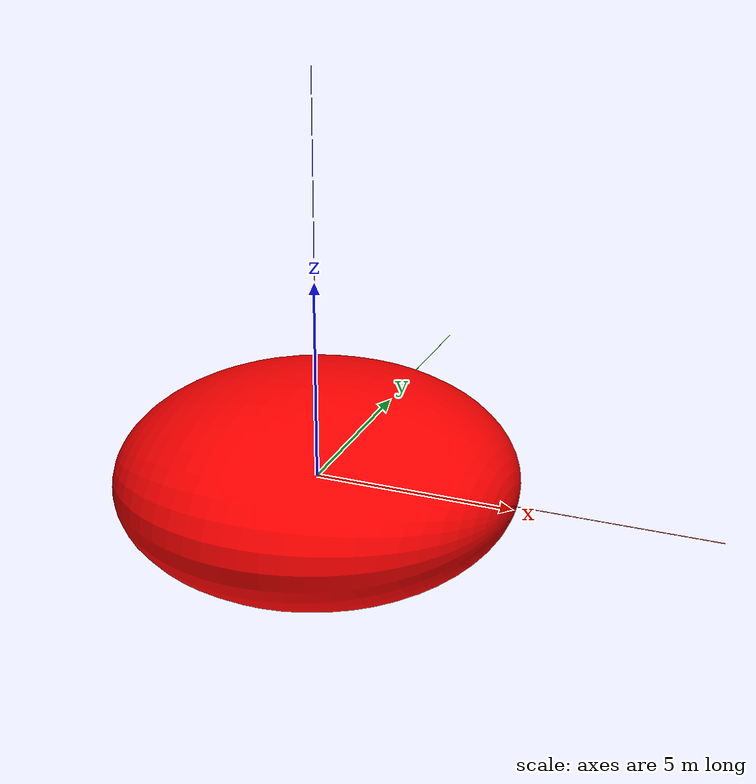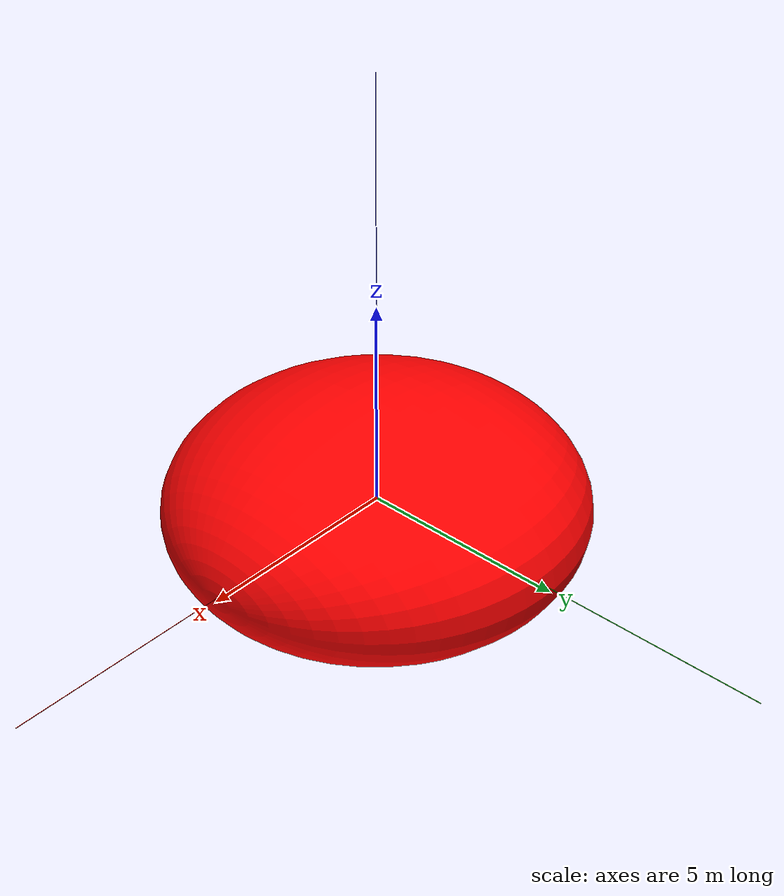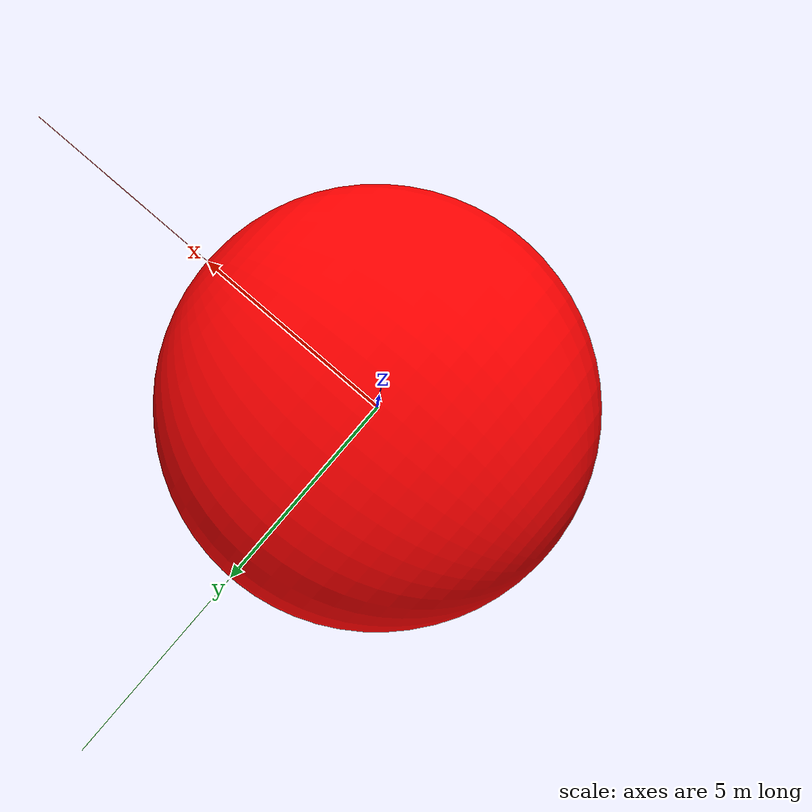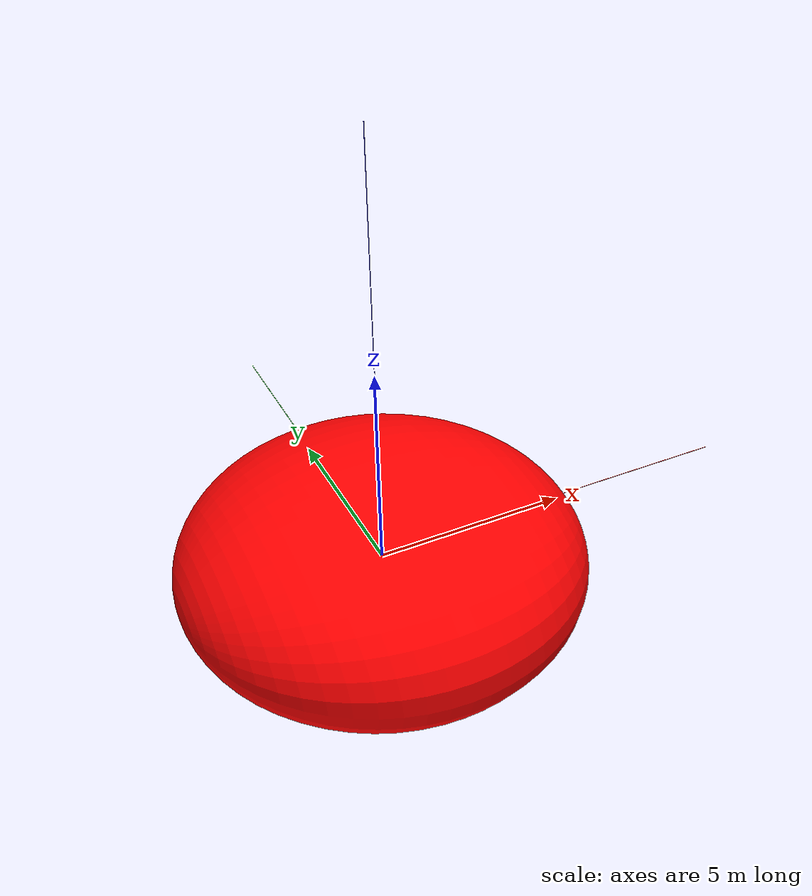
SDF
<sdf version="1.6">
 <world name="waves">
  <physics name="1ms" type="ignore">
   <max_step_size>0.001</max_step_size>
   <real_time_factor>1</real_time_factor>
  </physics>
  <plugin filename="gz-sim-physics-system" name="gz::sim::systems::Physics"/>
  <plugin filename="gz-sim-sensors-system" name="gz::sim::systems::Sensors">
   <render_engine>ogre2</render_engine>
   <background_color>0.8 0.8 0.8</background_color>
  </plugin>
  <plugin filename="gz-sim-scene-broadcaster-system" name="gz::sim::systems::SceneBroadcaster"/>
  <plugin filename="gz-sim-user-commands-system" name="gz::sim::systems::UserCommands"/>
  <plugin filename="gz-sim-imu-system" name="gz::sim::systems::Imu"/>
  <gravity>0 0 0</gravity>
  <scene><ambient>1.0 1.0 1.0</ambient><background>0.8 0.8 0.8</background></scene>
  <light type="directional" name="sun">
   <pose>0 0 10 0 0 0</pose>
   <diffuse>0.8 0.8 0.8 1</diffuse>
   <specular>0.6 0.6 0.6 1</specular>
   <direction>-0.5 0.1 -0.9</direction>
  </light>
  <model name="axes">
   <static>1</static>
   <link name="link">
    <visual name="r">
     <cast_shadows>0</cast_shadows>
     <pose>5 0 0.1 0 0 0</pose>
     <geometry><box><size>10 0.01 0.01</size></box></geometry>
     <material>
      <ambient>1 0 0 1</ambient>
      <diffuse>1 0 0 1</diffuse>
      <emissive>1 0 0 1</emissive>
      <specular>0.5 0.5 0.5 1</specular>
     </material>
    </visual>
    <visual name="g">
     <cast_shadows>0</cast_shadows>
     <pose>0 5 0.1 0 0 0</pose>
     <geometry><box><size>0.01 10 0.01</size></box></geometry>
     <material>
      <ambient>0 1 0 1</ambient>
      <diffuse>0 1 0 1</diffuse>
      <emissive>0 1 0 1</emissive>
      <specular>0.5 0.5 0.5 1</specular>
     </material>
    </visual>
    <visual name="b">
     <cast_shadows>0</cast_shadows>
     <pose>0 0 5.1 0 0 0</pose>
     <geometry><box><size>0.01 0.01 10</size></box></geometry>
     <material>
      <ambient>0 0 1 1</ambient>
      <diffuse>0 0 1 1</diffuse>
      <emissive>0 0 1 1</emissive>
      <specular>0.5 0.5 0.5 1</specular>
     </material>
    </visual>
   </link>
  </model>
  <include>
   <uri>model://ellipsoid_buoy</uri>
   <name>ellipsoid_buoy</name>
   <plugin filename="gz-waves1-linear-wave-body-system" name="gz::sim::systems::LinearWaveBody">
    <hdf5_file>model://ellipsoid_buoy/config/hydrodata/ellipsoid_f5244.h5</hdf5_file>
    <waves><regular><period>6</period><height>2</height><direction>0</direction><phase>0</phase></regular></waves>
    <simulation_parameters><gravity>9.81</gravity><fluid_density>1025</fluid_density></simulation_parameters>
    <geometry>
     <center_of_waterplane>0 0 0</center_of_waterplane>
     <center_of_buoyancy>0 0 -0.935</center_of_buoyancy>
     <displaced_volume>129.1381</displaced_volume>
    </geometry>
    <hydro_coeffs>
     <scaled>0</scaled>
     <hydrostatic>
      <linear_restoring>0.        0.        0.        0.        0.        0.
              0.        0.        0.        0.        0.        0.
              0.        0.   777494.4      -3.6    -402.7       0.
              0.        0.       -3.6 6167224.2      -0.1       0.
              0.        0.     -402.7      -0.1 6179979.4       0.
              0.        0.        0.        0.        0.        0.</linear_restoring>
     </hydrostatic>
     <radiation>
      <added_mass>52732.7109003133   -0.0461102712478722 5.88390664387022 0.296417351644741 246367.266847758 -1.69953653780694
              -0.0678279438415122 52944.8240664938 -1.47610970294622 -246974.480351485 -0.376605346811632 34.7833617031108
              5.56653991122738 0.0361713254775427 197297.142256690 0.802697521049529 -87.4935912381782 -0.0504125898702509
              0.410840691063419 -247341.339091709 5.02714890072835 1214533.79620113 2.83888902153701 -166.779120688123
              246734.857503928 -0.346433003966073 -87.1795788996776 2.60143644204397 1215195.98272167 -2.36242713115735
              -1.30857894347732 34.6478012553392 0.0173325214982212 -165.977540011457 -1.09781377470450 108.258384753611</added_mass>
      <damping>7209.55521458289 -0.00241865277674112 -0.656452733818339 0.0362151909394597 33068.9436025348 -0.277065103262815
              -0.00574983097131929 7224.96421786452 0.0739544503252989 -33093.8859951854 -0.0481987286722465 4.65143300682749
              -0.894991216445364 1.44416946591210 114644.248735475 -6.26262145357765 -57.3651869899508 -0.0632414440092088
              0.0458640797833837 -33189.4228421519 -2.06423557434899 152022.421220666 0.311347231737735 -21.3664338314253
              33165.4358604128 -0.0326285489204398 -57.6246853052043 0.264850645030705 152122.332407559 -1.27495177084548
              -0.231015729667316 4.65422866544508 -0.00392458624416725 -21.3177927485565	-1.06001165595936 0.0259605842341352</damping>
     </radiation>
     <excitation>
      <combined>
       <re>3750.27966906368
                1.36136318915143
                422045.810882563
                -12.1223298789796
                17026.4196175993
                -0.120671686522160</re>
       <im>154952.048410117
                0.0258067417631121
                119022.435012338
                -1.48920899489199
                712781.363146319
                -5.43599198405567</im>
      </combined>
      <froude_krylov>
       <re>9.23543827040243
                0.0162480147898594
                622401.014204239
                -6.38980408679980
                -282.389237456753
                -0.000103055222405902</re>
       <im>126959.968499544
                -0.0166309938157517
                -34.6068541762491
                0.533226736595381
                590993.613169733
                -3.78930171294708</im>
      </froude_krylov>
      <scattering>
       <re>3741.04423079327
                1.34511517436157
                -200355.203321676
                -5.73252579217983
                17308.8088550560
                -0.120568631299754</re>
       <im>27992.0799105738
                0.0424377355788638
                119057.041866514
                -2.02243573148737
                121787.749976586
                -1.64669027110858</im>
      </scattering>
     </excitation>
    </hydro_coeffs>
    <forces>
     <gravity_on>1</gravity_on>
     <buoyancy_on>1</buoyancy_on>
     <hydrostatic_restoring_on>1</hydrostatic_restoring_on>
     <radiation_damping_on>1</radiation_damping_on>
     <radiation_added_mass_on>1</radiation_added_mass_on>
     <excitation_on>1</excitation_on>
     <excitation_froude_krylov_on>1</excitation_froude_krylov_on>
     <excitation_scattering_on>1</excitation_scattering_on>
    </forces>
    <debug>
     <gravity_on>0</gravity_on>
     <buoyancy_on>0</buoyancy_on>
     <radiation_damping_on>0</radiation_damping_on>
     <radiation_added_mass_on>0</radiation_added_mass_on>
     <excitation_on>0</excitation_on>
    </debug>
    <publishers>
     <update_rate>20</update_rate>
     <gravity_on>1</gravity_on>
     <buoyancy_on>1</buoyancy_on>
     <hydrostatic_restoring_on>1</hydrostatic_restoring_on>
     <radiation_damping_on>1</radiation_damping_on>
     <radiation_added_mass_on>1</radiation_added_mass_on>
     <excitation_on>1</excitation_on>
     <excitation_froude_krylov_on>1</excitation_froude_krylov_on>
     <excitation_scattering_on>1</excitation_scattering_on>
     <gravity_topic>/force/gravity</gravity_topic>
     <buoyancy_topic>/force/buoyancy</buoyancy_topic>
     <hydrostatic_restoring_topic>/force/restoring</hydrostatic_restoring_topic>
     <radiation_damping_topic>/force/radiation_damping</radiation_damping_topic>
     <radiation_added_mass_topic>/force/radiation_added_mass</radiation_added_mass_topic>
     <excitation_topic>/force/excitation</excitation_topic>
     <excitation_froude_krylov_topic>/force/excitation_froude_krylov</excitation_froude_krylov_topic>
     <excitation_scattering_topic>/force/excitation_scattering</excitation_scattering_topic>
    </publishers>
   </plugin>
   <plugin filename="gz-sim-joint-state-publisher-system" name="gz::sim::systems::JointStatePublisher"/>
   <plugin filename="gz-sim-odometry-publisher-system" name="gz::sim::systems::OdometryPublisher">
    <odom_frame>odom</odom_frame>
    <robot_base_frame>base_link</robot_base_frame>
    <odom_publish_frequency>50</odom_publish_frequency>
    <odom_topic>model/ellipsoid_buoy/odometry</odom_topic>
    <dimensions>3</dimensions>
   </plugin>
   <plugin filename="gz-sim-pose-publisher-system" name="gz::sim::systems::PosePublisher">
    <publish_link_pose>true</publish_link_pose>
    <use_pose_vector_msg>true</use_pose_vector_msg>
    <static_publisher>true</static_publisher>
    <static_update_frequency>1</static_update_frequency>
   </plugin>
  </include>
 </world>
</sdf>

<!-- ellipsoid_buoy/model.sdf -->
<sdf version="1.6">
  <model name="ellipsoid_buoy">
    <pose>0 0 0 0 0 0</pose>
    <link name="base_link">
      <visual name="visual">
        <pose>0 0 -2.0 0 0 0</pose>
        <geometry>
          <mesh>
            <uri>models://ellipsoid_buoy/meshes/ellipsoid.stl</uri>
          </mesh>
        </geometry>
        <material>
          <ambient>1 0 0 1</ambient>
          <diffuse>1 0 0 1</diffuse>
          <specular>0.8 0.8 0.8 1</specular>
        </material>
      </visual>
      <collision name="collision">
        <pose>0 0 -2.0 0 0 0</pose>
        <geometry>
          <mesh>
            <uri>models://ellipsoid_buoy/meshes/ellipsoid.stl</uri>
          </mesh>
        </geometry>
      </collision>
      <inertial>
        <pose>0 0 -2.0 0 0 0</pose>
        <mass>134200</mass>
        <inertia>
          <ixx>838750</ixx>
          <ixy>0.0</ixy>
          <ixz>0.0</ixz>
          <iyy>838750</iyy>
          <iyz>0.0</iyz>
          <izz>1342000</izz>
        </inertia>
      </inertial>
    </link>
  </model>
</sdf>
